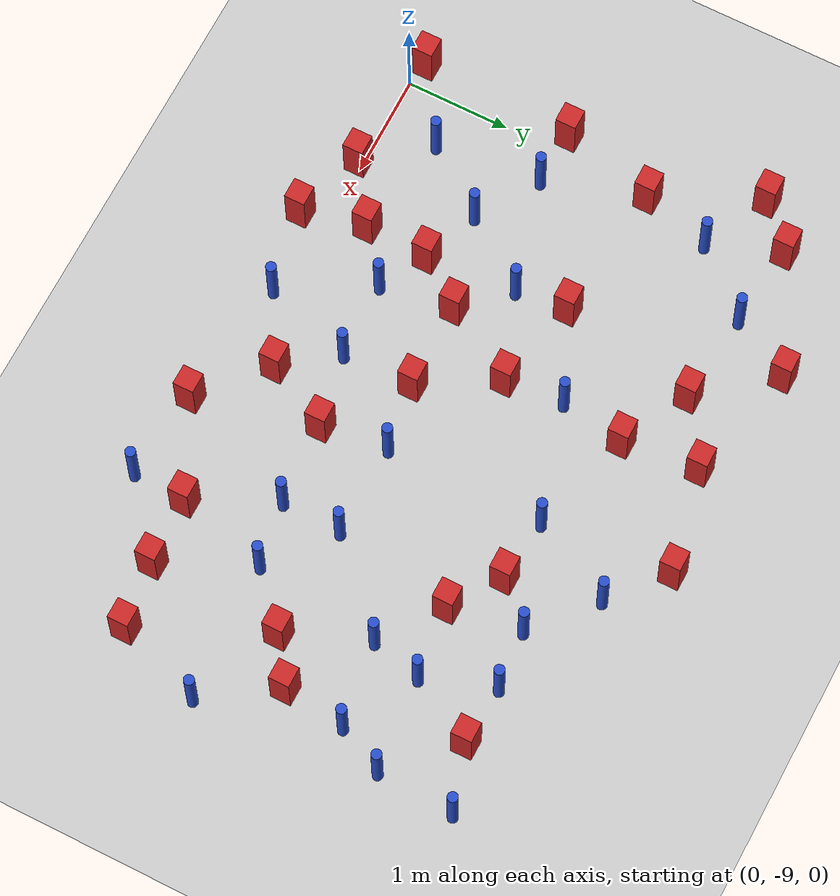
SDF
<sdf version="1.6">
 <world name="default">
  <model name="ground_plane">
   <static>1</static>
   <link name="link">
    <collision name="collision">
     <geometry><plane><normal>0 0 1</normal><size>100 100</size></plane></geometry>
     <surface><friction><ode><mu>100</mu><mu2>50</mu2></ode></friction></surface>
    </collision>
    <visual name="visual">
     <cast_shadows>0</cast_shadows>
     <geometry><plane><normal>0 0 1</normal><size>100 100</size></plane></geometry>
     <material>
      <ambient>1.0 1.0 1.0 1.0</ambient>
      <diffuse>0.8 0.8 0.8 1.0</diffuse>
      <specular>0.01 0.01 0.01 1.000000</specular>
     </material>
    </visual>
   </link>
  </model>
  <model name="square_post_obstacle3">
   <static>true</static>
   <pose>3.26243857863 -4.69614410593 -6.11067671241e-07 -5.50515727128e-06 -8.79689657224e-07 2.37013304536e-05</pose>
   <link name="link">
    <pose>0 0 0.25 0 -0 0</pose>
    <inertial>
     <mass>100</mass>
     <inertia>
      <ixx>0.166667</ixx>
      <ixy>0</ixy>
      <ixz>0</ixz>
      <iyy>0.166667</iyy>
      <iyz>0</iyz>
      <izz>0.166667</izz>
     </inertia>
    </inertial>
    <collision name="collision"><geometry><box><size>.2 .2 .5</size></box></geometry></collision>
    <visual name="visual">
     <geometry><box><size>.2 .2 .5</size></box></geometry>
     <material>
      <script><name>Gazebo/Red</name><uri>file://media/materials/scripts/gazebo.material</uri></script>
     </material>
    </visual>
   </link>
  </model>
  <model name="square_post_obstacle5">
   <static>true</static>
   <pose>3.12100335999 -8.73791378668 -6.11067671241e-07 -5.50515727128e-06 -8.79689657224e-07 2.37013304536e-05</pose>
   <link name="link">
    <pose>0 0 0.25 0 -0 0</pose>
    <inertial>
     <mass>100</mass>
     <inertia>
      <ixx>0.166667</ixx>
      <ixy>0</ixy>
      <ixz>0</ixz>
      <iyy>0.166667</iyy>
      <iyz>0</iyz>
      <izz>0.166667</izz>
     </inertia>
    </inertial>
    <collision name="collision"><geometry><box><size>.2 .2 .5</size></box></geometry></collision>
    <visual name="visual">
     <geometry><box><size>.2 .2 .5</size></box></geometry>
     <material>
      <script><name>Gazebo/Red</name><uri>file://media/materials/scripts/gazebo.material</uri></script>
     </material>
    </visual>
   </link>
  </model>
  <model name="pole_obstacle6">
   <static>true</static>
   <pose>3.78379597058 -5.12910789023 -9.47619616065e-06 5.49618799738e-07 2.3631041406e-07 -1.55090534801e-07</pose>
   <link name="link">
    <pose>0 0 0.3 0 -0 0</pose>
    <inertial>
     <mass>1</mass>
     <inertia><ixx>0.145833</ixx><ixy>0</ixy><ixz>0</ixz><iyy>0.145833</iyy><iyz>0</iyz><izz>0.125</izz></inertia>
    </inertial>
    <collision name="collision">
     <geometry><cylinder><radius>0.05</radius><length>.6</length></cylinder></geometry>
    </collision>
    <visual name="visual">
     <geometry><cylinder><radius>0.05</radius><length>.6</length></cylinder></geometry>
     <material>
      <script><name>Gazebo/Blue</name><uri>file://media/materials/scripts/gazebo.material</uri></script>
     </material>
    </visual>
   </link>
  </model>
  <model name="square_post_obstacle16">
   <static>true</static>
   <pose>2.29584751034 -6.84661061984 -6.11067671241e-07 -5.50515727128e-06 -8.79689657224e-07 2.37013304536e-05</pose>
   <link name="link">
    <pose>0 0 0.25 0 -0 0</pose>
    <inertial>
     <mass>100</mass>
     <inertia>
      <ixx>0.166667</ixx>
      <ixy>0</ixy>
      <ixz>0</ixz>
      <iyy>0.166667</iyy>
      <iyz>0</iyz>
      <izz>0.166667</izz>
     </inertia>
    </inertial>
    <collision name="collision"><geometry><box><size>.2 .2 .5</size></box></geometry></collision>
    <visual name="visual">
     <geometry><box><size>.2 .2 .5</size></box></geometry>
     <material>
      <script><name>Gazebo/Red</name><uri>file://media/materials/scripts/gazebo.material</uri></script>
     </material>
    </visual>
   </link>
  </model>
  <model name="square_post_obstacle19">
   <static>true</static>
   <pose>5.91239716687 -8.72316252022 -6.11067671241e-07 -5.50515727128e-06 -8.79689657224e-07 2.37013304536e-05</pose>
   <link name="link">
    <pose>0 0 0.25 0 -0 0</pose>
    <inertial>
     <mass>100</mass>
     <inertia>
      <ixx>0.166667</ixx>
      <ixy>0</ixy>
      <ixz>0</ixz>
      <iyy>0.166667</iyy>
      <iyz>0</iyz>
      <izz>0.166667</izz>
     </inertia>
    </inertial>
    <collision name="collision"><geometry><box><size>.2 .2 .5</size></box></geometry></collision>
    <visual name="visual">
     <geometry><box><size>.2 .2 .5</size></box></geometry>
     <material>
      <script><name>Gazebo/Red</name><uri>file://media/materials/scripts/gazebo.material</uri></script>
     </material>
    </visual>
   </link>
  </model>
  <model name="square_post_obstacle21">
   <static>true</static>
   <pose>-0.157672818846 -7.43281856623 -6.11067671241e-07 -5.50515727128e-06 -8.79689657224e-07 2.37013304536e-05</pose>
   <link name="link">
    <pose>0 0 0.25 0 -0 0</pose>
    <inertial>
     <mass>100</mass>
     <inertia>
      <ixx>0.166667</ixx>
      <ixy>0</ixy>
      <ixz>0</ixz>
      <iyy>0.166667</iyy>
      <iyz>0</iyz>
      <izz>0.166667</izz>
     </inertia>
    </inertial>
    <collision name="collision"><geometry><box><size>.2 .2 .5</size></box></geometry></collision>
    <visual name="visual">
     <geometry><box><size>.2 .2 .5</size></box></geometry>
     <material>
      <script><name>Gazebo/Red</name><uri>file://media/materials/scripts/gazebo.material</uri></script>
     </material>
    </visual>
   </link>
  </model>
  <model name="pole_obstacle14">
   <static>true</static>
   <pose>4.92073651587 -5.56536060567 -9.47619616065e-06 5.49618799737e-07 2.36310414037e-07 -1.55090534814e-07</pose>
   <link name="link">
    <pose>0 0 0.3 0 -0 0</pose>
    <inertial>
     <mass>1</mass>
     <inertia><ixx>0.145833</ixx><ixy>0</ixy><ixz>0</ixz><iyy>0.145833</iyy><iyz>0</iyz><izz>0.125</izz></inertia>
    </inertial>
    <collision name="collision">
     <geometry><cylinder><radius>0.05</radius><length>.6</length></cylinder></geometry>
    </collision>
    <visual name="visual">
     <geometry><cylinder><radius>0.05</radius><length>.6</length></cylinder></geometry>
     <material>
      <script><name>Gazebo/Blue</name><uri>file://media/materials/scripts/gazebo.material</uri></script>
     </material>
    </visual>
   </link>
  </model>
  <model name="square_post_obstacle29">
   <static>true</static>
   <pose>2.71370478664 -7.55995916179 -6.11067671241e-07 -5.50515727128e-06 -8.79689657224e-07 2.37013304536e-05</pose>
   <link name="link">
    <pose>0 0 0.25 0 -0 0</pose>
    <inertial>
     <mass>100</mass>
     <inertia>
      <ixx>0.166667</ixx>
      <ixy>0</ixy>
      <ixz>0</ixz>
      <iyy>0.166667</iyy>
      <iyz>0</iyz>
      <izz>0.166667</izz>
     </inertia>
    </inertial>
    <collision name="collision"><geometry><box><size>.2 .2 .5</size></box></geometry></collision>
    <visual name="visual">
     <geometry><box><size>.2 .2 .5</size></box></geometry>
     <material>
      <script><name>Gazebo/Red</name><uri>file://media/materials/scripts/gazebo.material</uri></script>
     </material>
    </visual>
   </link>
  </model>
  <model name="square_post_obstacle31">
   <static>true</static>
   <pose>5.34881727139 -7.50798174967 -6.11067671241e-07 -5.50515727128e-06 -8.79689657224e-07 2.37013304536e-05</pose>
   <link name="link">
    <pose>0 0 0.25 0 -0 0</pose>
    <inertial>
     <mass>100</mass>
     <inertia>
      <ixx>0.166667</ixx>
      <ixy>0</ixy>
      <ixz>0</ixz>
      <iyy>0.166667</iyy>
      <iyz>0</iyz>
      <izz>0.166667</izz>
     </inertia>
    </inertial>
    <collision name="collision"><geometry><box><size>.2 .2 .5</size></box></geometry></collision>
    <visual name="visual">
     <geometry><box><size>.2 .2 .5</size></box></geometry>
     <material>
      <script><name>Gazebo/Red</name><uri>file://media/materials/scripts/gazebo.material</uri></script>
     </material>
    </visual>
   </link>
  </model>
  <model name="square_post_obstacle32">
   <static>true</static>
   <pose>-0.214031079817 -8.93507122701 -6.11067671241e-07 -5.50515727128e-06 -8.79689657224e-07 2.37013304536e-05</pose>
   <link name="link">
    <pose>0 0 0.25 0 -0 0</pose>
    <inertial>
     <mass>100</mass>
     <inertia>
      <ixx>0.166667</ixx>
      <ixy>0</ixy>
      <ixz>0</ixz>
      <iyy>0.166667</iyy>
      <iyz>0</iyz>
      <izz>0.166667</izz>
     </inertia>
    </inertial>
    <collision name="collision"><geometry><box><size>.2 .2 .5</size></box></geometry></collision>
    <visual name="visual">
     <geometry><box><size>.2 .2 .5</size></box></geometry>
     <material>
      <script><name>Gazebo/Red</name><uri>file://media/materials/scripts/gazebo.material</uri></script>
     </material>
    </visual>
   </link>
  </model>
  <model name="square_post_obstacle36">
   <static>true</static>
   <pose>2.27719685832 -4.9150809379 -6.11067671241e-07 -5.50515727128e-06 -8.79689657224e-07 2.37013304536e-05</pose>
   <link name="link">
    <pose>0 0 0.25 0 -0 0</pose>
    <inertial>
     <mass>100</mass>
     <inertia>
      <ixx>0.166667</ixx>
      <ixy>0</ixy>
      <ixz>0</ixz>
      <iyy>0.166667</iyy>
      <iyz>0</iyz>
      <izz>0.166667</izz>
     </inertia>
    </inertial>
    <collision name="collision"><geometry><box><size>.2 .2 .5</size></box></geometry></collision>
    <visual name="visual">
     <geometry><box><size>.2 .2 .5</size></box></geometry>
     <material>
      <script><name>Gazebo/Red</name><uri>file://media/materials/scripts/gazebo.material</uri></script>
     </material>
    </visual>
   </link>
  </model>
  <model name="pole_obstacle46">
   <static>true</static>
   <pose>0.80936705623 -5.23602324306 -9.47619616065e-06 5.49618799737e-07 2.36310414065e-07 -1.55090534796e-07</pose>
   <link name="link">
    <pose>0 0 0.3 0 -0 0</pose>
    <inertial>
     <mass>1</mass>
     <inertia><ixx>0.145833</ixx><ixy>0</ixy><ixz>0</ixz><iyy>0.145833</iyy><iyz>0</iyz><izz>0.125</izz></inertia>
    </inertial>
    <collision name="collision">
     <geometry><cylinder><radius>0.05</radius><length>.6</length></cylinder></geometry>
    </collision>
    <visual name="visual">
     <geometry><cylinder><radius>0.05</radius><length>.6</length></cylinder></geometry>
     <material>
      <script><name>Gazebo/Blue</name><uri>file://media/materials/scripts/gazebo.material</uri></script>
     </material>
    </visual>
   </link>
  </model>
  <model name="pole_obstacle50">
   <static>true</static>
   <pose>4.86937734623 -7.95486675785 -9.47619616065e-06 5.49618799738e-07 2.36310414051e-07 -1.55090534804e-07</pose>
   <link name="link">
    <pose>0 0 0.3 0 -0 0</pose>
    <inertial>
     <mass>1</mass>
     <inertia><ixx>0.145833</ixx><ixy>0</ixy><ixz>0</ixz><iyy>0.145833</iyy><iyz>0</iyz><izz>0.125</izz></inertia>
    </inertial>
    <collision name="collision">
     <geometry><cylinder><radius>0.05</radius><length>.6</length></cylinder></geometry>
    </collision>
    <visual name="visual">
     <geometry><cylinder><radius>0.05</radius><length>.6</length></cylinder></geometry>
     <material>
      <script><name>Gazebo/Blue</name><uri>file://media/materials/scripts/gazebo.material</uri></script>
     </material>
    </visual>
   </link>
  </model>
  <model name="square_post_obstacle49">
   <static>true</static>
   <pose>3.72389370794 -9.27459773669 -6.11067671241e-07 -5.50515727128e-06 -8.79689657224e-07 2.37013304536e-05</pose>
   <link name="link">
    <pose>0 0 0.25 0 -0 0</pose>
    <inertial>
     <mass>100</mass>
     <inertia>
      <ixx>0.166667</ixx>
      <ixy>0</ixy>
      <ixz>0</ixz>
      <iyy>0.166667</iyy>
      <iyz>0</iyz>
      <izz>0.166667</izz>
     </inertia>
    </inertial>
    <collision name="collision"><geometry><box><size>.2 .2 .5</size></box></geometry></collision>
    <visual name="visual">
     <geometry><box><size>.2 .2 .5</size></box></geometry>
     <material>
      <script><name>Gazebo/Red</name><uri>file://media/materials/scripts/gazebo.material</uri></script>
     </material>
    </visual>
   </link>
  </model>
  <model name="square_post_obstacle51">
   <static>true</static>
   <pose>4.62635705903 -8.83663768722 -6.11067671241e-07 -5.50515727128e-06 -8.79689657224e-07 2.37013304536e-05</pose>
   <link name="link">
    <pose>0 0 0.25 0 -0 0</pose>
    <inertial>
     <mass>100</mass>
     <inertia>
      <ixx>0.166667</ixx>
      <ixy>0</ixy>
      <ixz>0</ixz>
      <iyy>0.166667</iyy>
      <iyz>0</iyz>
      <izz>0.166667</izz>
     </inertia>
    </inertial>
    <collision name="collision"><geometry><box><size>.2 .2 .5</size></box></geometry></collision>
    <visual name="visual">
     <geometry><box><size>.2 .2 .5</size></box></geometry>
     <material>
      <script><name>Gazebo/Red</name><uri>file://media/materials/scripts/gazebo.material</uri></script>
     </material>
    </visual>
   </link>
  </model>
  <model name="pole_obstacle51">
   <static>true</static>
   <pose>4.60182848027 -9.36551012112 -9.47619616065e-06 5.49618799737e-07 2.36310414065e-07 -1.55090534796e-07</pose>
   <link name="link">
    <pose>0 0 0.3 0 -0 0</pose>
    <inertial>
     <mass>1</mass>
     <inertia><ixx>0.145833</ixx><ixy>0</ixy><ixz>0</ixz><iyy>0.145833</iyy><iyz>0</iyz><izz>0.125</izz></inertia>
    </inertial>
    <collision name="collision">
     <geometry><cylinder><radius>0.05</radius><length>.6</length></cylinder></geometry>
    </collision>
    <visual name="visual">
     <geometry><cylinder><radius>0.05</radius><length>.6</length></cylinder></geometry>
     <material>
      <script><name>Gazebo/Blue</name><uri>file://media/materials/scripts/gazebo.material</uri></script>
     </material>
    </visual>
   </link>
  </model>
  <model name="square_post_obstacle59">
   <static>true</static>
   <pose>1.87997288087 -7.57449383454 -6.11067671241e-07 -5.50515727128e-06 -8.79689657224e-07 2.37013304536e-05</pose>
   <link name="link">
    <pose>0 0 0.25 0 -0 0</pose>
    <inertial>
     <mass>100</mass>
     <inertia>
      <ixx>0.166667</ixx>
      <ixy>0</ixy>
      <ixz>0</ixz>
      <iyy>0.166667</iyy>
      <iyz>0</iyz>
      <izz>0.166667</izz>
     </inertia>
    </inertial>
    <collision name="collision"><geometry><box><size>.2 .2 .5</size></box></geometry></collision>
    <visual name="visual">
     <geometry><box><size>.2 .2 .5</size></box></geometry>
     <material>
      <script><name>Gazebo/Red</name><uri>file://media/materials/scripts/gazebo.material</uri></script>
     </material>
    </visual>
   </link>
  </model>
  <model name="square_post_obstacle61">
   <static>true</static>
   <pose>5.4870114806 -5.59550047635 -6.11067671241e-07 -5.50515727128e-06 -8.79689657224e-07 2.37013304536e-05</pose>
   <link name="link">
    <pose>0 0 0.25 0 -0 0</pose>
    <inertial>
     <mass>100</mass>
     <inertia>
      <ixx>0.166667</ixx>
      <ixy>0</ixy>
      <ixz>0</ixz>
      <iyy>0.166667</iyy>
      <iyz>0</iyz>
      <izz>0.166667</izz>
     </inertia>
    </inertial>
    <collision name="collision"><geometry><box><size>.2 .2 .5</size></box></geometry></collision>
    <visual name="visual">
     <geometry><box><size>.2 .2 .5</size></box></geometry>
     <material>
      <script><name>Gazebo/Red</name><uri>file://media/materials/scripts/gazebo.material</uri></script>
     </material>
    </visual>
   </link>
  </model>
  <model name="square_post_obstacle69">
   <static>true</static>
   <pose>1.68728030394 -5.31511158763 -6.11067671241e-07 -5.50515727128e-06 -8.79689657224e-07 2.37013304536e-05</pose>
   <link name="link">
    <pose>0 0 0.25 0 -0 0</pose>
    <inertial>
     <mass>100</mass>
     <inertia>
      <ixx>0.166667</ixx>
      <ixy>0</ixy>
      <ixz>0</ixz>
      <iyy>0.166667</iyy>
      <iyz>0</iyz>
      <izz>0.166667</izz>
     </inertia>
    </inertial>
    <collision name="collision"><geometry><box><size>.2 .2 .5</size></box></geometry></collision>
    <visual name="visual">
     <geometry><box><size>.2 .2 .5</size></box></geometry>
     <material>
      <script><name>Gazebo/Red</name><uri>file://media/materials/scripts/gazebo.material</uri></script>
     </material>
    </visual>
   </link>
  </model>
  <model name="pole_obstacle68">
   <static>true</static>
   <pose>1.99010910339 -8.27722311263 -9.47619616065e-06 5.49618799737e-07 2.3631041405e-07 -1.55090534805e-07</pose>
   <link name="link">
    <pose>0 0 0.3 0 -0 0</pose>
    <inertial>
     <mass>1</mass>
     <inertia><ixx>0.145833</ixx><ixy>0</ixy><ixz>0</ixz><iyy>0.145833</iyy><iyz>0</iyz><izz>0.125</izz></inertia>
    </inertial>
    <collision name="collision">
     <geometry><cylinder><radius>0.05</radius><length>.6</length></cylinder></geometry>
    </collision>
    <visual name="visual">
     <geometry><cylinder><radius>0.05</radius><length>.6</length></cylinder></geometry>
     <material>
      <script><name>Gazebo/Blue</name><uri>file://media/materials/scripts/gazebo.material</uri></script>
     </material>
    </visual>
   </link>
  </model>
  <model name="square_post_obstacle73">
   <static>true</static>
   <pose>0.0813138174091 -6.51331117413 -6.11067671241e-07 -5.50515727128e-06 -8.79689657224e-07 2.37013304536e-05</pose>
   <link name="link">
    <pose>0 0 0.25 0 -0 0</pose>
    <inertial>
     <mass>100</mass>
     <inertia>
      <ixx>0.166667</ixx>
      <ixy>0</ixy>
      <ixz>0</ixz>
      <iyy>0.166667</iyy>
      <iyz>0</iyz>
      <izz>0.166667</izz>
     </inertia>
    </inertial>
    <collision name="collision"><geometry><box><size>.2 .2 .5</size></box></geometry></collision>
    <visual name="visual">
     <geometry><box><size>.2 .2 .5</size></box></geometry>
     <material>
      <script><name>Gazebo/Red</name><uri>file://media/materials/scripts/gazebo.material</uri></script>
     </material>
    </visual>
   </link>
  </model>
  <model name="pole_obstacle77">
   <static>true</static>
   <pose>5.0332622306 -6.72867836462 -9.47619616065e-06 5.49618799737e-07 2.36310414037e-07 -1.55090534814e-07</pose>
   <link name="link">
    <pose>0 0 0.3 0 -0 0</pose>
    <inertial>
     <mass>1</mass>
     <inertia><ixx>0.145833</ixx><ixy>0</ixy><ixz>0</ixz><iyy>0.145833</iyy><iyz>0</iyz><izz>0.125</izz></inertia>
    </inertial>
    <collision name="collision">
     <geometry><cylinder><radius>0.05</radius><length>.6</length></cylinder></geometry>
    </collision>
    <visual name="visual">
     <geometry><cylinder><radius>0.05</radius><length>.6</length></cylinder></geometry>
     <material>
      <script><name>Gazebo/Blue</name><uri>file://media/materials/scripts/gazebo.material</uri></script>
     </material>
    </visual>
   </link>
  </model>
  <model name="square_post_obstacle77">
   <static>true</static>
   <pose>1.12222395651 -4.64681043831 -6.11067671241e-07 -5.50515727128e-06 -8.79689657224e-07 2.37013304536e-05</pose>
   <link name="link">
    <pose>0 0 0.25 0 -0 0</pose>
    <inertial>
     <mass>100</mass>
     <inertia>
      <ixx>0.166667</ixx>
      <ixy>0</ixy>
      <ixz>0</ixz>
      <iyy>0.166667</iyy>
      <iyz>0</iyz>
      <izz>0.166667</izz>
     </inertia>
    </inertial>
    <collision name="collision"><geometry><box><size>.2 .2 .5</size></box></geometry></collision>
    <visual name="visual">
     <geometry><box><size>.2 .2 .5</size></box></geometry>
     <material>
      <script><name>Gazebo/Red</name><uri>file://media/materials/scripts/gazebo.material</uri></script>
     </material>
    </visual>
   </link>
  </model>
  <model name="pole_obstacle94">
   <static>true</static>
   <pose>4.26373539201 -7.47788262629 -9.47619616065e-06 5.49618799737e-07 2.36310414037e-07 -1.55090534814e-07</pose>
   <link name="link">
    <pose>0 0 0.3 0 -0 0</pose>
    <inertial>
     <mass>1</mass>
     <inertia><ixx>0.145833</ixx><ixy>0</ixy><ixz>0</ixz><iyy>0.145833</iyy><iyz>0</iyz><izz>0.125</izz></inertia>
    </inertial>
    <collision name="collision">
     <geometry><cylinder><radius>0.05</radius><length>.6</length></cylinder></geometry>
    </collision>
    <visual name="visual">
     <geometry><cylinder><radius>0.05</radius><length>.6</length></cylinder></geometry>
     <material>
      <script><name>Gazebo/Blue</name><uri>file://media/materials/scripts/gazebo.material</uri></script>
     </material>
    </visual>
   </link>
  </model>
  <model name="pole_obstacle100">
   <static>true</static>
   <pose>4.2461978077 -8.05750209351 -9.47619616065e-06 5.49618799737e-07 2.36310414065e-07 -1.55090534796e-07</pose>
   <link name="link">
    <pose>0 0 0.3 0 -0 0</pose>
    <inertial>
     <mass>1</mass>
     <inertia><ixx>0.145833</ixx><ixy>0</ixy><ixz>0</ixz><iyy>0.145833</iyy><iyz>0</iyz><izz>0.125</izz></inertia>
    </inertial>
    <collision name="collision">
     <geometry><cylinder><radius>0.05</radius><length>.6</length></cylinder></geometry>
    </collision>
    <visual name="visual">
     <geometry><cylinder><radius>0.05</radius><length>.6</length></cylinder></geometry>
     <material>
      <script><name>Gazebo/Blue</name><uri>file://media/materials/scripts/gazebo.material</uri></script>
     </material>
    </visual>
   </link>
  </model>
  <model name="pole_obstacle115">
   <static>true</static>
   <pose>4.35307020137 -5.61693320986 -9.47619616065e-06 5.49618799737e-07 2.36310414037e-07 -1.55090534814e-07</pose>
   <link name="link">
    <pose>0 0 0.3 0 -0 0</pose>
    <inertial>
     <mass>1</mass>
     <inertia><ixx>0.145833</ixx><ixy>0</ixy><ixz>0</ixz><iyy>0.145833</iyy><iyz>0</iyz><izz>0.125</izz></inertia>
    </inertial>
    <collision name="collision">
     <geometry><cylinder><radius>0.05</radius><length>.6</length></cylinder></geometry>
    </collision>
    <visual name="visual">
     <geometry><cylinder><radius>0.05</radius><length>.6</length></cylinder></geometry>
     <material>
      <script><name>Gazebo/Blue</name><uri>file://media/materials/scripts/gazebo.material</uri></script>
     </material>
    </visual>
   </link>
  </model>
  <model name="pole_obstacle120">
   <static>true</static>
   <pose>0.979479961822 -7.8290987903 -9.47619616065e-06 5.49618799737e-07 2.36310414071e-07 -1.55090534793e-07</pose>
   <link name="link">
    <pose>0 0 0.3 0 -0 0</pose>
    <inertial>
     <mass>1</mass>
     <inertia><ixx>0.145833</ixx><ixy>0</ixy><ixz>0</ixz><iyy>0.145833</iyy><iyz>0</iyz><izz>0.125</izz></inertia>
    </inertial>
    <collision name="collision">
     <geometry><cylinder><radius>0.05</radius><length>.6</length></cylinder></geometry>
    </collision>
    <visual name="visual">
     <geometry><cylinder><radius>0.05</radius><length>.6</length></cylinder></geometry>
     <material>
      <script><name>Gazebo/Blue</name><uri>file://media/materials/scripts/gazebo.material</uri></script>
     </material>
    </visual>
   </link>
  </model>
  <model name="pole_obstacle123">
   <static>true</static>
   <pose>2.74034869295 -8.24713297106 -9.4761961606e-06 5.49618799729e-07 2.36310414e-07 -1.55090534824e-07</pose>
   <link name="link">
    <pose>0 0 0.3 0 -0 0</pose>
    <inertial>
     <mass>1</mass>
     <inertia><ixx>0.145833</ixx><ixy>0</ixy><ixz>0</ixz><iyy>0.145833</iyy><iyz>0</iyz><izz>0.125</izz></inertia>
    </inertial>
    <collision name="collision">
     <geometry><cylinder><radius>0.05</radius><length>.6</length></cylinder></geometry>
    </collision>
    <visual name="visual">
     <geometry><cylinder><radius>0.05</radius><length>.6</length></cylinder></geometry>
     <material>
      <script><name>Gazebo/Blue</name><uri>file://media/materials/scripts/gazebo.material</uri></script>
     </material>
    </visual>
   </link>
  </model>
  <model name="pole_obstacle130">
   <static>true</static>
   <pose>3.36912312646 -7.46615530303 -9.47619616065e-06 5.49618799738e-07 2.3631041406e-07 -1.55090534801e-07</pose>
   <link name="link">
    <pose>0 0 0.3 0 -0 0</pose>
    <inertial>
     <mass>1</mass>
     <inertia><ixx>0.145833</ixx><ixy>0</ixy><ixz>0</ixz><iyy>0.145833</iyy><iyz>0</iyz><izz>0.125</izz></inertia>
    </inertial>
    <collision name="collision">
     <geometry><cylinder><radius>0.05</radius><length>.6</length></cylinder></geometry>
    </collision>
    <visual name="visual">
     <geometry><cylinder><radius>0.05</radius><length>.6</length></cylinder></geometry>
     <material>
      <script><name>Gazebo/Blue</name><uri>file://media/materials/scripts/gazebo.material</uri></script>
     </material>
    </visual>
   </link>
  </model>
  <model name="pole_obstacle132">
   <static>true</static>
   <pose>6.07789976278 -6.15119692012 -9.47619616065e-06 5.49618799737e-07 2.36310414037e-07 -1.55090534814e-07</pose>
   <link name="link">
    <pose>0 0 0.3 0 -0 0</pose>
    <inertial>
     <mass>1</mass>
     <inertia><ixx>0.145833</ixx><ixy>0</ixy><ixz>0</ixz><iyy>0.145833</iyy><iyz>0</iyz><izz>0.125</izz></inertia>
    </inertial>
    <collision name="collision">
     <geometry><cylinder><radius>0.05</radius><length>.6</length></cylinder></geometry>
    </collision>
    <visual name="visual">
     <geometry><cylinder><radius>0.05</radius><length>.6</length></cylinder></geometry>
     <material>
      <script><name>Gazebo/Blue</name><uri>file://media/materials/scripts/gazebo.material</uri></script>
     </material>
    </visual>
   </link>
  </model>
  <model name="square_post_obstacle117">
   <static>true</static>
   <pose>5.27136699172 -8.80876529328 -6.11067671241e-07 -5.50515727128e-06 -8.79689657224e-07 2.37013304536e-05</pose>
   <link name="link">
    <pose>0 0 0.25 0 -0 0</pose>
    <inertial>
     <mass>100</mass>
     <inertia>
      <ixx>0.166667</ixx>
      <ixy>0</ixy>
      <ixz>0</ixz>
      <iyy>0.166667</iyy>
      <iyz>0</iyz>
      <izz>0.166667</izz>
     </inertia>
    </inertial>
    <collision name="collision"><geometry><box><size>.2 .2 .5</size></box></geometry></collision>
    <visual name="visual">
     <geometry><box><size>.2 .2 .5</size></box></geometry>
     <material>
      <script><name>Gazebo/Red</name><uri>file://media/materials/scripts/gazebo.material</uri></script>
     </material>
    </visual>
   </link>
  </model>
  <model name="pole_obstacle137">
   <static>true</static>
   <pose>5.15986570333 -6.23562625438 -9.47619616065e-06 5.49618799737e-07 2.36310414037e-07 -1.55090534814e-07</pose>
   <link name="link">
    <pose>0 0 0.3 0 -0 0</pose>
    <inertial>
     <mass>1</mass>
     <inertia><ixx>0.145833</ixx><ixy>0</ixy><ixz>0</ixz><iyy>0.145833</iyy><iyz>0</iyz><izz>0.125</izz></inertia>
    </inertial>
    <collision name="collision">
     <geometry><cylinder><radius>0.05</radius><length>.6</length></cylinder></geometry>
    </collision>
    <visual name="visual">
     <geometry><cylinder><radius>0.05</radius><length>.6</length></cylinder></geometry>
     <material>
      <script><name>Gazebo/Blue</name><uri>file://media/materials/scripts/gazebo.material</uri></script>
     </material>
    </visual>
   </link>
  </model>
  <model name="square_post_obstacle124">
   <static>true</static>
   <pose>3.98110030316 -5.99164191462 -6.11067671241e-07 -5.50515727128e-06 -8.79689657224e-07 2.37013304536e-05</pose>
   <link name="link">
    <pose>0 0 0.25 0 -0 0</pose>
    <inertial>
     <mass>100</mass>
     <inertia>
      <ixx>0.166667</ixx>
      <ixy>0</ixy>
      <ixz>0</ixz>
      <iyy>0.166667</iyy>
      <iyz>0</iyz>
      <izz>0.166667</izz>
     </inertia>
    </inertial>
    <collision name="collision"><geometry><box><size>.2 .2 .5</size></box></geometry></collision>
    <visual name="visual">
     <geometry><box><size>.2 .2 .5</size></box></geometry>
     <material>
      <script><name>Gazebo/Red</name><uri>file://media/materials/scripts/gazebo.material</uri></script>
     </material>
    </visual>
   </link>
  </model>
  <model name="pole_obstacle140">
   <static>true</static>
   <pose>1.47413838496 -7.15785431899 -9.47619616065e-06 5.49618799737e-07 2.36310414061e-07 -1.550905348e-07</pose>
   <link name="link">
    <pose>0 0 0.3 0 -0 0</pose>
    <inertial>
     <mass>1</mass>
     <inertia><ixx>0.145833</ixx><ixy>0</ixy><ixz>0</ixz><iyy>0.145833</iyy><iyz>0</iyz><izz>0.125</izz></inertia>
    </inertial>
    <collision name="collision">
     <geometry><cylinder><radius>0.05</radius><length>.6</length></cylinder></geometry>
    </collision>
    <visual name="visual">
     <geometry><cylinder><radius>0.05</radius><length>.6</length></cylinder></geometry>
     <material>
      <script><name>Gazebo/Blue</name><uri>file://media/materials/scripts/gazebo.material</uri></script>
     </material>
    </visual>
   </link>
  </model>
  <model name="square_post_obstacle127">
   <static>true</static>
   <pose>2.35350226811 -5.65251645253 -6.11067671241e-07 -5.50515727128e-06 -8.79689657224e-07 2.37013304536e-05</pose>
   <link name="link">
    <pose>0 0 0.25 0 -0 0</pose>
    <inertial>
     <mass>100</mass>
     <inertia>
      <ixx>0.166667</ixx>
      <ixy>0</ixy>
      <ixz>0</ixz>
      <iyy>0.166667</iyy>
      <iyz>0</iyz>
      <izz>0.166667</izz>
     </inertia>
    </inertial>
    <collision name="collision"><geometry><box><size>.2 .2 .5</size></box></geometry></collision>
    <visual name="visual">
     <geometry><box><size>.2 .2 .5</size></box></geometry>
     <material>
      <script><name>Gazebo/Red</name><uri>file://media/materials/scripts/gazebo.material</uri></script>
     </material>
    </visual>
   </link>
  </model>
  <model name="square_post_obstacle129">
   <static>true</static>
   <pose>4.45427005923 -6.31032964207 -6.11067671241e-07 -5.50515727128e-06 -8.79689657224e-07 2.37013304536e-05</pose>
   <link name="link">
    <pose>0 0 0.25 0 -0 0</pose>
    <inertial>
     <mass>100</mass>
     <inertia>
      <ixx>0.166667</ixx>
      <ixy>0</ixy>
      <ixz>0</ixz>
      <iyy>0.166667</iyy>
      <iyz>0</iyz>
      <izz>0.166667</izz>
     </inertia>
    </inertial>
    <collision name="collision"><geometry><box><size>.2 .2 .5</size></box></geometry></collision>
    <visual name="visual">
     <geometry><box><size>.2 .2 .5</size></box></geometry>
     <material>
      <script><name>Gazebo/Red</name><uri>file://media/materials/scripts/gazebo.material</uri></script>
     </material>
    </visual>
   </link>
  </model>
  <model name="square_post_obstacle132">
   <static>true</static>
   <pose>1.53778311695 -8.02857967519 -6.11067671241e-07 -5.50515727128e-06 -8.79689657224e-07 2.37013304536e-05</pose>
   <link name="link">
    <pose>0 0 0.25 0 -0 0</pose>
    <inertial>
     <mass>100</mass>
     <inertia>
      <ixx>0.166667</ixx>
      <ixy>0</ixy>
      <ixz>0</ixz>
      <iyy>0.166667</iyy>
      <iyz>0</iyz>
      <izz>0.166667</izz>
     </inertia>
    </inertial>
    <collision name="collision"><geometry><box><size>.2 .2 .5</size></box></geometry></collision>
    <visual name="visual">
     <geometry><box><size>.2 .2 .5</size></box></geometry>
     <material>
      <script><name>Gazebo/Red</name><uri>file://media/materials/scripts/gazebo.material</uri></script>
     </material>
    </visual>
   </link>
  </model>
  <model name="square_post_obstacle143">
   <static>true</static>
   <pose>1.41644439381 -6.65588039301 -6.11067671241e-07 -5.50515727128e-06 -8.79689657224e-07 2.37013304536e-05</pose>
   <link name="link">
    <pose>0 0 0.25 0 -0 0</pose>
    <inertial>
     <mass>100</mass>
     <inertia>
      <ixx>0.166667</ixx>
      <ixy>0</ixy>
      <ixz>0</ixz>
      <iyy>0.166667</iyy>
      <iyz>0</iyz>
      <izz>0.166667</izz>
     </inertia>
    </inertial>
    <collision name="collision"><geometry><box><size>.2 .2 .5</size></box></geometry></collision>
    <visual name="visual">
     <geometry><box><size>.2 .2 .5</size></box></geometry>
     <material>
      <script><name>Gazebo/Red</name><uri>file://media/materials/scripts/gazebo.material</uri></script>
     </material>
    </visual>
   </link>
  </model>
  <model name="pole_obstacle155">
   <static>true</static>
   <pose>0.274351001078 -5.84142880705 -9.47619616065e-06 5.49618799737e-07 2.36310414067e-07 -1.55090534795e-07</pose>
   <link name="link">
    <pose>0 0 0.3 0 -0 0</pose>
    <inertial>
     <mass>1</mass>
     <inertia><ixx>0.145833</ixx><ixy>0</ixy><ixz>0</ixz><iyy>0.145833</iyy><iyz>0</iyz><izz>0.125</izz></inertia>
    </inertial>
    <collision name="collision">
     <geometry><cylinder><radius>0.05</radius><length>.6</length></cylinder></geometry>
    </collision>
    <visual name="visual">
     <geometry><cylinder><radius>0.05</radius><length>.6</length></cylinder></geometry>
     <material>
      <script><name>Gazebo/Blue</name><uri>file://media/materials/scripts/gazebo.material</uri></script>
     </material>
    </visual>
   </link>
  </model>
  <model name="square_post_obstacle158">
   <static>true</static>
   <pose>5.76348845739 -7.21993062445 -6.11067671241e-07 -5.50515727128e-06 -8.79689657224e-07 2.37013304536e-05</pose>
   <link name="link">
    <pose>0 0 0.25 0 -0 0</pose>
    <inertial>
     <mass>100</mass>
     <inertia>
      <ixx>0.166667</ixx>
      <ixy>0</ixy>
      <ixz>0</ixz>
      <iyy>0.166667</iyy>
      <iyz>0</iyz>
      <izz>0.166667</izz>
     </inertia>
    </inertial>
    <collision name="collision"><geometry><box><size>.2 .2 .5</size></box></geometry></collision>
    <visual name="visual">
     <geometry><box><size>.2 .2 .5</size></box></geometry>
     <material>
      <script><name>Gazebo/Red</name><uri>file://media/materials/scripts/gazebo.material</uri></script>
     </material>
    </visual>
   </link>
  </model>
  <model name="square_post_obstacle163">
   <static>true</static>
   <pose>3.44129410988 -8.10626207446 -6.11067671241e-07 -5.50515727128e-06 -8.79689657224e-07 2.37013304536e-05</pose>
   <link name="link">
    <pose>0 0 0.25 0 -0 0</pose>
    <inertial>
     <mass>100</mass>
     <inertia>
      <ixx>0.166667</ixx>
      <ixy>0</ixy>
      <ixz>0</ixz>
      <iyy>0.166667</iyy>
      <iyz>0</iyz>
      <izz>0.166667</izz>
     </inertia>
    </inertial>
    <collision name="collision"><geometry><box><size>.2 .2 .5</size></box></geometry></collision>
    <visual name="visual">
     <geometry><box><size>.2 .2 .5</size></box></geometry>
     <material>
      <script><name>Gazebo/Red</name><uri>file://media/materials/scripts/gazebo.material</uri></script>
     </material>
    </visual>
   </link>
  </model>
  <model name="pole_obstacle173">
   <static>true</static>
   <pose>6.22252580439 -7.89207675753 -9.47619616065e-06 5.49618799737e-07 2.36310414037e-07 -1.55090534814e-07</pose>
   <link name="link">
    <pose>0 0 0.3 0 -0 0</pose>
    <inertial>
     <mass>1</mass>
     <inertia><ixx>0.145833</ixx><ixy>0</ixy><ixz>0</ixz><iyy>0.145833</iyy><iyz>0</iyz><izz>0.125</izz></inertia>
    </inertial>
    <collision name="collision">
     <geometry><cylinder><radius>0.05</radius><length>.6</length></cylinder></geometry>
    </collision>
    <visual name="visual">
     <geometry><cylinder><radius>0.05</radius><length>.6</length></cylinder></geometry>
     <material>
      <script><name>Gazebo/Blue</name><uri>file://media/materials/scripts/gazebo.material</uri></script>
     </material>
    </visual>
   </link>
  </model>
  <model name="pole_obstacle174">
   <static>true</static>
   <pose>2.46413185718 -9.11424270532 -9.4761961606e-06 5.49618799729e-07 2.36310414e-07 -1.55090534824e-07</pose>
   <link name="link">
    <pose>0 0 0.3 0 -0 0</pose>
    <inertial>
     <mass>1</mass>
     <inertia><ixx>0.145833</ixx><ixy>0</ixy><ixz>0</ixz><iyy>0.145833</iyy><iyz>0</iyz><izz>0.125</izz></inertia>
    </inertial>
    <collision name="collision">
     <geometry><cylinder><radius>0.05</radius><length>.6</length></cylinder></geometry>
    </collision>
    <visual name="visual">
     <geometry><cylinder><radius>0.05</radius><length>.6</length></cylinder></geometry>
     <material>
      <script><name>Gazebo/Blue</name><uri>file://media/materials/scripts/gazebo.material</uri></script>
     </material>
    </visual>
   </link>
  </model>
  <model name="pole_obstacle175">
   <static>true</static>
   <pose>0.496479201874 -8.47252105102 -9.47619616065e-06 5.49618799737e-07 2.36310414043e-07 -1.5509053481e-07</pose>
   <link name="link">
    <pose>0 0 0.3 0 -0 0</pose>
    <inertial>
     <mass>1</mass>
     <inertia><ixx>0.145833</ixx><ixy>0</ixy><ixz>0</ixz><iyy>0.145833</iyy><iyz>0</iyz><izz>0.125</izz></inertia>
    </inertial>
    <collision name="collision">
     <geometry><cylinder><radius>0.05</radius><length>.6</length></cylinder></geometry>
    </collision>
    <visual name="visual">
     <geometry><cylinder><radius>0.05</radius><length>.6</length></cylinder></geometry>
     <material>
      <script><name>Gazebo/Blue</name><uri>file://media/materials/scripts/gazebo.material</uri></script>
     </material>
    </visual>
   </link>
  </model>
  <model name="pole_obstacle181">
   <static>true</static>
   <pose>6.11928699666 -5.3995880418 -9.47619616065e-06 5.49618799737e-07 2.36310414037e-07 -1.55090534814e-07</pose>
   <link name="link">
    <pose>0 0 0.3 0 -0 0</pose>
    <inertial>
     <mass>1</mass>
     <inertia><ixx>0.145833</ixx><ixy>0</ixy><ixz>0</ixz><iyy>0.145833</iyy><iyz>0</iyz><izz>0.125</izz></inertia>
    </inertial>
    <collision name="collision">
     <geometry><cylinder><radius>0.05</radius><length>.6</length></cylinder></geometry>
    </collision>
    <visual name="visual">
     <geometry><cylinder><radius>0.05</radius><length>.6</length></cylinder></geometry>
     <material>
      <script><name>Gazebo/Blue</name><uri>file://media/materials/scripts/gazebo.material</uri></script>
     </material>
    </visual>
   </link>
  </model>
  <model name="square_post_obstacle172">
   <static>true</static>
   <pose>0.957070075027 -9.03648833823 -6.11067671241e-07 -5.50515727128e-06 -8.79689657224e-07 2.37013304536e-05</pose>
   <link name="link">
    <pose>0 0 0.25 0 -0 0</pose>
    <inertial>
     <mass>100</mass>
     <inertia>
      <ixx>0.166667</ixx>
      <ixy>0</ixy>
      <ixz>0</ixz>
      <iyy>0.166667</iyy>
      <iyz>0</iyz>
      <izz>0.166667</izz>
     </inertia>
    </inertial>
    <collision name="collision"><geometry><box><size>.2 .2 .5</size></box></geometry></collision>
    <visual name="visual">
     <geometry><box><size>.2 .2 .5</size></box></geometry>
     <material>
      <script><name>Gazebo/Red</name><uri>file://media/materials/scripts/gazebo.material</uri></script>
     </material>
    </visual>
   </link>
  </model>
  <model name="square_post_obstacle190">
   <static>true</static>
   <pose>1.51566169849 -8.64953079891 -6.11067671241e-07 -5.50515727128e-06 -8.79689657224e-07 2.37013304536e-05</pose>
   <link name="link">
    <pose>0 0 0.25 0 -0 0</pose>
    <inertial>
     <mass>100</mass>
     <inertia>
      <ixx>0.166667</ixx>
      <ixy>0</ixy>
      <ixz>0</ixz>
      <iyy>0.166667</iyy>
      <iyz>0</iyz>
      <izz>0.166667</izz>
     </inertia>
    </inertial>
    <collision name="collision"><geometry><box><size>.2 .2 .5</size></box></geometry></collision>
    <visual name="visual">
     <geometry><box><size>.2 .2 .5</size></box></geometry>
     <material>
      <script><name>Gazebo/Red</name><uri>file://media/materials/scripts/gazebo.material</uri></script>
     </material>
    </visual>
   </link>
  </model>
  <model name="square_post_obstacle198">
   <static>true</static>
   <pose>-0.384982238175 -5.52509912628 -6.11067671241e-07 -5.50515727128e-06 -8.79689657224e-07 2.37013304536e-05</pose>
   <link name="link">
    <pose>0 0 0.25 0 -0 0</pose>
    <inertial>
     <mass>100</mass>
     <inertia>
      <ixx>0.166667</ixx>
      <ixy>0</ixy>
      <ixz>0</ixz>
      <iyy>0.166667</iyy>
      <iyz>0</iyz>
      <izz>0.166667</izz>
     </inertia>
    </inertial>
    <collision name="collision"><geometry><box><size>.2 .2 .5</size></box></geometry></collision>
    <visual name="visual">
     <geometry><box><size>.2 .2 .5</size></box></geometry>
     <material>
      <script><name>Gazebo/Red</name><uri>file://media/materials/scripts/gazebo.material</uri></script>
     </material>
    </visual>
   </link>
  </model>
  <model name="square_post_obstacle200">
   <static>true</static>
   <pose>1.65119201231 -9.26557125337 -6.11067671241e-07 -5.50515727128e-06 -8.79689657224e-07 2.37013304536e-05</pose>
   <link name="link">
    <pose>0 0 0.25 0 -0 0</pose>
    <inertial>
     <mass>100</mass>
     <inertia>
      <ixx>0.166667</ixx>
      <ixy>0</ixy>
      <ixz>0</ixz>
      <iyy>0.166667</iyy>
      <iyz>0</iyz>
      <izz>0.166667</izz>
     </inertia>
    </inertial>
    <collision name="collision"><geometry><box><size>.2 .2 .5</size></box></geometry></collision>
    <visual name="visual">
     <geometry><box><size>.2 .2 .5</size></box></geometry>
     <material>
      <script><name>Gazebo/Red</name><uri>file://media/materials/scripts/gazebo.material</uri></script>
     </material>
    </visual>
   </link>
  </model>
  <model name="square_post_obstacle201">
   <static>true</static>
   <pose>0.0138459308364 -5.15612722253 -6.11067671241e-07 -5.50515727128e-06 -8.79689657224e-07 2.37013304536e-05</pose>
   <link name="link">
    <pose>0 0 0.25 0 -0 0</pose>
    <inertial>
     <mass>100</mass>
     <inertia>
      <ixx>0.166667</ixx>
      <ixy>0</ixy>
      <ixz>0</ixz>
      <iyy>0.166667</iyy>
      <iyz>0</iyz>
      <izz>0.166667</izz>
     </inertia>
    </inertial>
    <collision name="collision"><geometry><box><size>.2 .2 .5</size></box></geometry></collision>
    <visual name="visual">
     <geometry><box><size>.2 .2 .5</size></box></geometry>
     <material>
      <script><name>Gazebo/Red</name><uri>file://media/materials/scripts/gazebo.material</uri></script>
     </material>
    </visual>
   </link>
  </model>
  <model name="pole_obstacle189">
   <static>true</static>
   <pose>3.37816143906 -5.93542290156 -9.47619616065e-06 5.49618799738e-07 2.3631041406e-07 -1.55090534801e-07</pose>
   <link name="link">
    <pose>0 0 0.3 0 -0 0</pose>
    <inertial>
     <mass>1</mass>
     <inertia><ixx>0.145833</ixx><ixy>0</ixy><ixz>0</ixz><iyy>0.145833</iyy><iyz>0</iyz><izz>0.125</izz></inertia>
    </inertial>
    <collision name="collision">
     <geometry><cylinder><radius>0.05</radius><length>.6</length></cylinder></geometry>
    </collision>
    <visual name="visual">
     <geometry><cylinder><radius>0.05</radius><length>.6</length></cylinder></geometry>
     <material>
      <script><name>Gazebo/Blue</name><uri>file://media/materials/scripts/gazebo.material</uri></script>
     </material>
    </visual>
   </link>
  </model>
  <model name="pole_obstacle191">
   <static>true</static>
   <pose>5.85408137931 -6.60796137271 -9.47619616065e-06 5.49618799737e-07 2.36310414037e-07 -1.55090534814e-07</pose>
   <link name="link">
    <pose>0 0 0.3 0 -0 0</pose>
    <inertial>
     <mass>1</mass>
     <inertia><ixx>0.145833</ixx><ixy>0</ixy><ixz>0</ixz><iyy>0.145833</iyy><iyz>0</iyz><izz>0.125</izz></inertia>
    </inertial>
    <collision name="collision">
     <geometry><cylinder><radius>0.05</radius><length>.6</length></cylinder></geometry>
    </collision>
    <visual name="visual">
     <geometry><cylinder><radius>0.05</radius><length>.6</length></cylinder></geometry>
     <material>
      <script><name>Gazebo/Blue</name><uri>file://media/materials/scripts/gazebo.material</uri></script>
     </material>
    </visual>
   </link>
  </model>
  <model name="pole_obstacle207">
   <static>true</static>
   <pose>0.381365370109 -7.45975195767 -9.47619616065e-06 5.49618799737e-07 2.36310414065e-07 -1.55090534796e-07</pose>
   <link name="link">
    <pose>0 0 0.3 0 -0 0</pose>
    <inertial>
     <mass>1</mass>
     <inertia><ixx>0.145833</ixx><ixy>0</ixy><ixz>0</ixz><iyy>0.145833</iyy><iyz>0</iyz><izz>0.125</izz></inertia>
    </inertial>
    <collision name="collision">
     <geometry><cylinder><radius>0.05</radius><length>.6</length></cylinder></geometry>
    </collision>
    <visual name="visual">
     <geometry><cylinder><radius>0.05</radius><length>.6</length></cylinder></geometry>
     <material>
      <script><name>Gazebo/Blue</name><uri>file://media/materials/scripts/gazebo.material</uri></script>
     </material>
    </visual>
   </link>
  </model>
  <model name="pole_obstacle219">
   <static>true</static>
   <pose>2.2581835255 -6.27479190175 -9.47619616065e-06 5.49618799738e-07 2.3631041406e-07 -1.55090534801e-07</pose>
   <link name="link">
    <pose>0 0 0.3 0 -0 0</pose>
    <inertial>
     <mass>1</mass>
     <inertia><ixx>0.145833</ixx><ixy>0</ixy><ixz>0</ixz><iyy>0.145833</iyy><iyz>0</iyz><izz>0.125</izz></inertia>
    </inertial>
    <collision name="collision">
     <geometry><cylinder><radius>0.05</radius><length>.6</length></cylinder></geometry>
    </collision>
    <visual name="visual">
     <geometry><cylinder><radius>0.05</radius><length>.6</length></cylinder></geometry>
     <material>
      <script><name>Gazebo/Blue</name><uri>file://media/materials/scripts/gazebo.material</uri></script>
     </material>
    </visual>
   </link>
  </model>
 </world>
</sdf>
